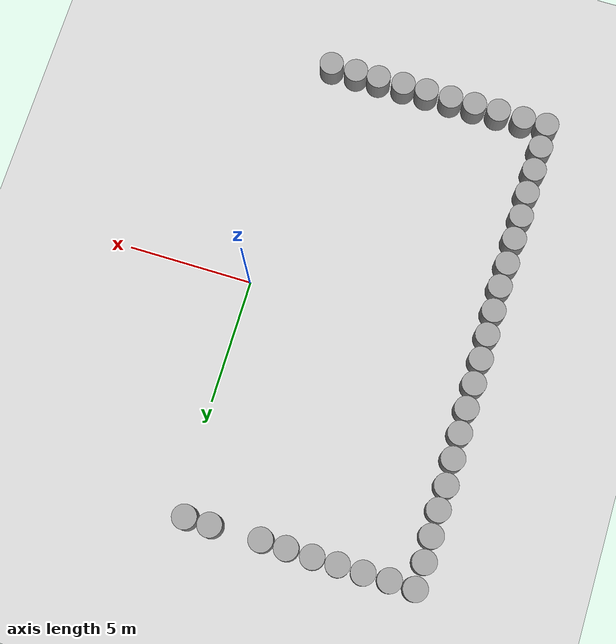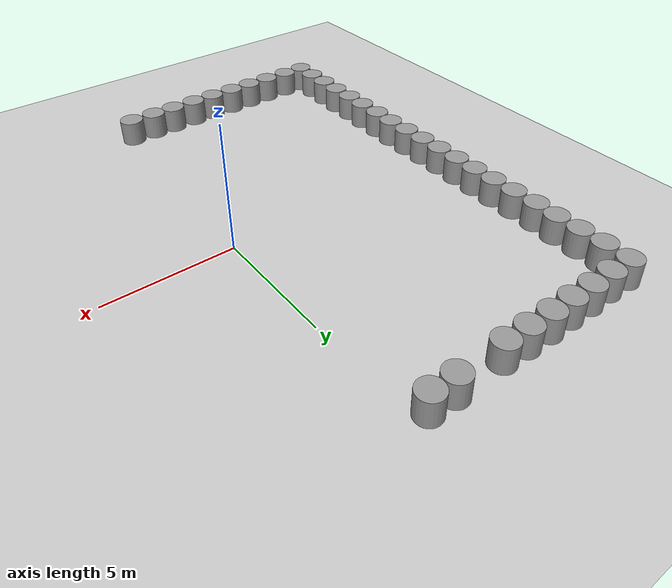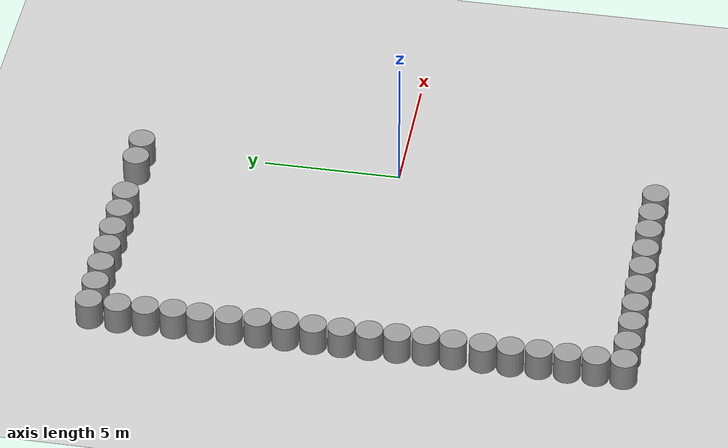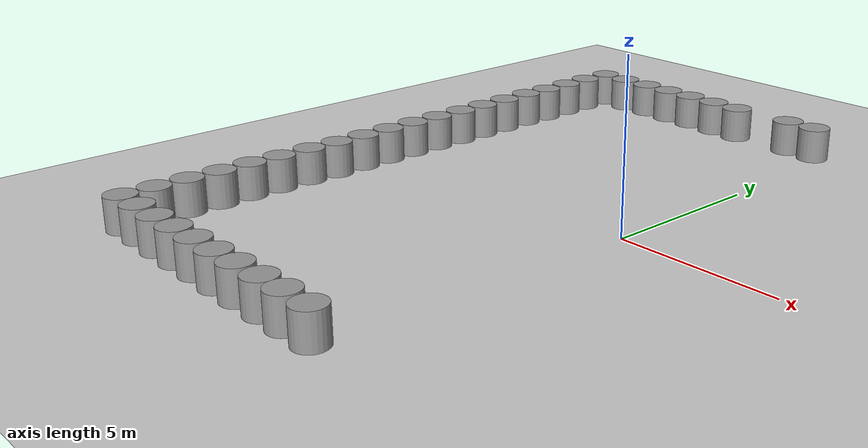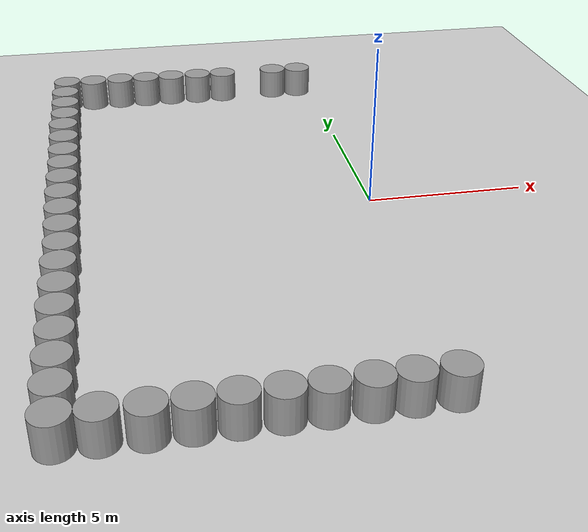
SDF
<sdf version="1.6">
 <world name="default">
  <model name="ground_plane">
   <static>1</static>
   <static>1</static>
   <link name="link">
    <collision name="collision">
     <geometry><plane><normal>0 0 1</normal><size>100 100</size></plane></geometry>
     <surface><friction><ode><mu>100</mu><mu2>50</mu2></ode></friction></surface>
    </collision>
    <visual name="visual">
     <cast_shadows>0</cast_shadows>
     <geometry><plane><normal>0 0 1</normal><size>100 100</size></plane></geometry>
     <material>
      <script><uri>file://media/materials/scripts/gazebo.material</uri><name>Gazebo/Grey</name></script>
     </material>
    </visual>
   </link>
  </model>
  <model name="unit_cylinder_153_clone">
   <static>1</static>
   <pose>-2.53306 9.49161 0 0 -0 0</pose>
   <link name="link">
    <inertial>
     <mass>1</mass>
     <inertia><ixx>0.145833</ixx><ixy>0</ixy><ixz>0</ixz><iyy>0.145833</iyy><iyz>0</iyz><izz>0.125</izz></inertia>
    </inertial>
    <collision name="collision">
     <geometry><cylinder><radius>5.33026e-14</radius><length>2.81043e-05</length></cylinder></geometry>
    </collision>
    <visual name="visual">
     <geometry><cylinder><radius>5.33026e-14</radius><length>2.81043e-05</length></cylinder></geometry>
     <material>
      <script><name>Gazebo/Grey</name><uri>file://media/materials/scripts/gazebo.material</uri></script>
     </material>
    </visual>
   </link>
  </model>
  <model name="unit_cylinder_153_clone_clone">
   <static>1</static>
   <pose>-3.49566 9.49338 0 0 -0 0</pose>
   <link name="link">
    <inertial>
     <mass>1</mass>
     <inertia><ixx>0.145833</ixx><ixy>0</ixy><ixz>0</ixz><iyy>0.145833</iyy><iyz>0</iyz><izz>0.125</izz></inertia>
    </inertial>
    <collision name="collision">
     <geometry><cylinder><radius>0.484115</radius><length>2.01101</length></cylinder></geometry>
    </collision>
    <visual name="visual">
     <geometry><cylinder><radius>0.484115</radius><length>2.01101</length></cylinder></geometry>
     <material>
      <script><name>Gazebo/Grey</name><uri>file://media/materials/scripts/gazebo.material</uri></script>
     </material>
    </visual>
   </link>
  </model>
  <model name="unit_cylinder_153_clone_clone_0">
   <static>1</static>
   <pose>-4.49436 9.51539 0 0 -0 0</pose>
   <link name="link">
    <inertial>
     <mass>1</mass>
     <inertia><ixx>0.145833</ixx><ixy>0</ixy><ixz>0</ixz><iyy>0.145833</iyy><iyz>0</iyz><izz>0.125</izz></inertia>
    </inertial>
    <collision name="collision">
     <geometry><cylinder><radius>0.484115</radius><length>2.01101</length></cylinder></geometry>
    </collision>
    <visual name="visual">
     <geometry><cylinder><radius>0.484115</radius><length>2.01101</length></cylinder></geometry>
     <material>
      <script><name>Gazebo/Grey</name><uri>file://media/materials/scripts/gazebo.material</uri></script>
     </material>
    </visual>
   </link>
  </model>
  <model name="unit_cylinder_153_clone_clone_1">
   <static>1</static>
   <pose>-5.51947 9.53739 0 0 -0 0</pose>
   <link name="link">
    <inertial>
     <mass>1</mass>
     <inertia><ixx>0.145833</ixx><ixy>0</ixy><ixz>0</ixz><iyy>0.145833</iyy><iyz>0</iyz><izz>0.125</izz></inertia>
    </inertial>
    <collision name="collision">
     <geometry><cylinder><radius>0.484115</radius><length>2.01101</length></cylinder></geometry>
    </collision>
    <visual name="visual">
     <geometry><cylinder><radius>0.484115</radius><length>2.01101</length></cylinder></geometry>
     <material>
      <script><name>Gazebo/Grey</name><uri>file://media/materials/scripts/gazebo.material</uri></script>
     </material>
    </visual>
   </link>
  </model>
  <model name="unit_cylinder_153_clone_clone_2">
   <static>1</static>
   <pose>-6.50057 9.52858 0 0 -0 0</pose>
   <link name="link">
    <inertial>
     <mass>1</mass>
     <inertia><ixx>0.145833</ixx><ixy>0</ixy><ixz>0</ixz><iyy>0.145833</iyy><iyz>0</iyz><izz>0.125</izz></inertia>
    </inertial>
    <collision name="collision">
     <geometry><cylinder><radius>0.484115</radius><length>2.01101</length></cylinder></geometry>
    </collision>
    <visual name="visual">
     <geometry><cylinder><radius>0.484115</radius><length>2.01101</length></cylinder></geometry>
     <material>
      <script><name>Gazebo/Grey</name><uri>file://media/materials/scripts/gazebo.material</uri></script>
     </material>
    </visual>
   </link>
  </model>
  <model name="unit_cylinder_153_clone_clone_3">
   <static>1</static>
   <pose>-7.49487 9.54178 0 0 -0 0</pose>
   <link name="link">
    <inertial>
     <mass>1</mass>
     <inertia><ixx>0.145833</ixx><ixy>0</ixy><ixz>0</ixz><iyy>0.145833</iyy><iyz>0</iyz><izz>0.125</izz></inertia>
    </inertial>
    <collision name="collision">
     <geometry><cylinder><radius>0.484115</radius><length>2.01101</length></cylinder></geometry>
    </collision>
    <visual name="visual">
     <geometry><cylinder><radius>0.484115</radius><length>2.01101</length></cylinder></geometry>
     <material>
      <script><name>Gazebo/Grey</name><uri>file://media/materials/scripts/gazebo.material</uri></script>
     </material>
    </visual>
   </link>
  </model>
  <model name="unit_cylinder_153_clone_clone_4">
   <static>1</static>
   <pose>-8.51117 9.52418 0 0 -0 0</pose>
   <link name="link">
    <inertial>
     <mass>1</mass>
     <inertia><ixx>0.145833</ixx><ixy>0</ixy><ixz>0</ixz><iyy>0.145833</iyy><iyz>0</iyz><izz>0.125</izz></inertia>
    </inertial>
    <collision name="collision">
     <geometry><cylinder><radius>0.484115</radius><length>2.01101</length></cylinder></geometry>
    </collision>
    <visual name="visual">
     <geometry><cylinder><radius>0.484115</radius><length>2.01101</length></cylinder></geometry>
     <material>
      <script><name>Gazebo/Grey</name><uri>file://media/materials/scripts/gazebo.material</uri></script>
     </material>
    </visual>
   </link>
  </model>
  <model name="unit_cylinder_153_clone_clone_5">
   <static>1</static>
   <pose>-9.50987 9.54619 0 0 -0 0</pose>
   <link name="link">
    <inertial>
     <mass>1</mass>
     <inertia><ixx>0.145833</ixx><ixy>0</ixy><ixz>0</ixz><iyy>0.145833</iyy><iyz>0</iyz><izz>0.125</izz></inertia>
    </inertial>
    <collision name="collision">
     <geometry><cylinder><radius>0.484115</radius><length>2.01101</length></cylinder></geometry>
    </collision>
    <visual name="visual">
     <geometry><cylinder><radius>0.484115</radius><length>2.01101</length></cylinder></geometry>
     <material>
      <script><name>Gazebo/Grey</name><uri>file://media/materials/scripts/gazebo.material</uri></script>
     </material>
    </visual>
   </link>
  </model>
  <model name="unit_cylinder_153_clone_clone_6">
   <static>1</static>
   <pose>-9.55826 8.50789 0 0 -0 0</pose>
   <link name="link">
    <inertial>
     <mass>1</mass>
     <inertia><ixx>0.145833</ixx><ixy>0</ixy><ixz>0</ixz><iyy>0.145833</iyy><iyz>0</iyz><izz>0.125</izz></inertia>
    </inertial>
    <collision name="collision">
     <geometry><cylinder><radius>0.484115</radius><length>2.01101</length></cylinder></geometry>
    </collision>
    <visual name="visual">
     <geometry><cylinder><radius>0.484115</radius><length>2.01101</length></cylinder></geometry>
     <material>
      <script><name>Gazebo/Grey</name><uri>file://media/materials/scripts/gazebo.material</uri></script>
     </material>
    </visual>
   </link>
  </model>
  <model name="unit_cylinder_153_clone_clone_7">
   <static>1</static>
   <pose>-9.54506 7.51359 0 0 -0 0</pose>
   <link name="link">
    <inertial>
     <mass>1</mass>
     <inertia><ixx>0.145833</ixx><ixy>0</ixy><ixz>0</ixz><iyy>0.145833</iyy><iyz>0</iyz><izz>0.125</izz></inertia>
    </inertial>
    <collision name="collision">
     <geometry><cylinder><radius>0.484115</radius><length>2.01101</length></cylinder></geometry>
    </collision>
    <visual name="visual">
     <geometry><cylinder><radius>0.484115</radius><length>2.01101</length></cylinder></geometry>
     <material>
      <script><name>Gazebo/Grey</name><uri>file://media/materials/scripts/gazebo.material</uri></script>
     </material>
    </visual>
   </link>
  </model>
  <model name="unit_cylinder_153_clone_clone_8">
   <static>1</static>
   <pose>-9.53187 6.50609 0 0 -0 0</pose>
   <link name="link">
    <inertial>
     <mass>1</mass>
     <inertia><ixx>0.145833</ixx><ixy>0</ixy><ixz>0</ixz><iyy>0.145833</iyy><iyz>0</iyz><izz>0.125</izz></inertia>
    </inertial>
    <collision name="collision">
     <geometry><cylinder><radius>0.484115</radius><length>2.01101</length></cylinder></geometry>
    </collision>
    <visual name="visual">
     <geometry><cylinder><radius>0.484115</radius><length>2.01101</length></cylinder></geometry>
     <material>
      <script><name>Gazebo/Grey</name><uri>file://media/materials/scripts/gazebo.material</uri></script>
     </material>
    </visual>
   </link>
  </model>
  <model name="unit_cylinder_153_clone_clone_9">
   <static>1</static>
   <pose>-9.56706 5.54699 0 0 -0 0</pose>
   <link name="link">
    <inertial>
     <mass>1</mass>
     <inertia><ixx>0.145833</ixx><ixy>0</ixy><ixz>0</ixz><iyy>0.145833</iyy><iyz>0</iyz><izz>0.125</izz></inertia>
    </inertial>
    <collision name="collision">
     <geometry><cylinder><radius>0.484115</radius><length>2.01101</length></cylinder></geometry>
    </collision>
    <visual name="visual">
     <geometry><cylinder><radius>0.484115</radius><length>2.01101</length></cylinder></geometry>
     <material>
      <script><name>Gazebo/Grey</name><uri>file://media/materials/scripts/gazebo.material</uri></script>
     </material>
    </visual>
   </link>
  </model>
  <model name="unit_cylinder_153_clone_clone_10">
   <static>1</static>
   <pose>-9.53627 4.50868 0 0 -0 0</pose>
   <link name="link">
    <inertial>
     <mass>1</mass>
     <inertia><ixx>0.145833</ixx><ixy>0</ixy><ixz>0</ixz><iyy>0.145833</iyy><iyz>0</iyz><izz>0.125</izz></inertia>
    </inertial>
    <collision name="collision">
     <geometry><cylinder><radius>0.484115</radius><length>2.01101</length></cylinder></geometry>
    </collision>
    <visual name="visual">
     <geometry><cylinder><radius>0.484115</radius><length>2.01101</length></cylinder></geometry>
     <material>
      <script><name>Gazebo/Grey</name><uri>file://media/materials/scripts/gazebo.material</uri></script>
     </material>
    </visual>
   </link>
  </model>
  <model name="unit_cylinder_153_clone_clone_11">
   <static>1</static>
   <pose>-9.52307 3.49679 0 0 -0 0</pose>
   <link name="link">
    <inertial>
     <mass>1</mass>
     <inertia><ixx>0.145833</ixx><ixy>0</ixy><ixz>0</ixz><iyy>0.145833</iyy><iyz>0</iyz><izz>0.125</izz></inertia>
    </inertial>
    <collision name="collision">
     <geometry><cylinder><radius>0.484115</radius><length>2.01101</length></cylinder></geometry>
    </collision>
    <visual name="visual">
     <geometry><cylinder><radius>0.484115</radius><length>2.01101</length></cylinder></geometry>
     <material>
      <script><name>Gazebo/Grey</name><uri>file://media/materials/scripts/gazebo.material</uri></script>
     </material>
    </visual>
   </link>
  </model>
  <model name="unit_cylinder_153_clone_clone_12">
   <static>1</static>
   <pose>-9.50986 2.51128 0 0 -0 0</pose>
   <link name="link">
    <inertial>
     <mass>1</mass>
     <inertia><ixx>0.145833</ixx><ixy>0</ixy><ixz>0</ixz><iyy>0.145833</iyy><iyz>0</iyz><izz>0.125</izz></inertia>
    </inertial>
    <collision name="collision">
     <geometry><cylinder><radius>0.484115</radius><length>2.01101</length></cylinder></geometry>
    </collision>
    <visual name="visual">
     <geometry><cylinder><radius>0.484115</radius><length>2.01101</length></cylinder></geometry>
     <material>
      <script><name>Gazebo/Grey</name><uri>file://media/materials/scripts/gazebo.material</uri></script>
     </material>
    </visual>
   </link>
  </model>
  <model name="unit_cylinder_153_clone_clone_13">
   <static>1</static>
   <pose>-9.52306 1.50818 0 0 -0 0</pose>
   <link name="link">
    <inertial>
     <mass>1</mass>
     <inertia><ixx>0.145833</ixx><ixy>0</ixy><ixz>0</ixz><iyy>0.145833</iyy><iyz>0</iyz><izz>0.125</izz></inertia>
    </inertial>
    <collision name="collision">
     <geometry><cylinder><radius>0.484115</radius><length>2.01101</length></cylinder></geometry>
    </collision>
    <visual name="visual">
     <geometry><cylinder><radius>0.484115</radius><length>2.01101</length></cylinder></geometry>
     <material>
      <script><name>Gazebo/Grey</name><uri>file://media/materials/scripts/gazebo.material</uri></script>
     </material>
    </visual>
   </link>
  </model>
  <model name="unit_cylinder_153_clone_clone_14">
   <static>1</static>
   <pose>-9.52307 0.50508 0 0 -0 0</pose>
   <link name="link">
    <inertial>
     <mass>1</mass>
     <inertia><ixx>0.145833</ixx><ixy>0</ixy><ixz>0</ixz><iyy>0.145833</iyy><iyz>0</iyz><izz>0.125</izz></inertia>
    </inertial>
    <collision name="collision">
     <geometry><cylinder><radius>0.484115</radius><length>2.01101</length></cylinder></geometry>
    </collision>
    <visual name="visual">
     <geometry><cylinder><radius>0.484115</radius><length>2.01101</length></cylinder></geometry>
     <material>
      <script><name>Gazebo/Grey</name><uri>file://media/materials/scripts/gazebo.material</uri></script>
     </material>
    </visual>
   </link>
  </model>
  <model name="unit_cylinder_153_clone_clone_15">
   <static>1</static>
   <pose>-9.50547 -0.484821 0 0 -0 0</pose>
   <link name="link">
    <inertial>
     <mass>1</mass>
     <inertia><ixx>0.145833</ixx><ixy>0</ixy><ixz>0</ixz><iyy>0.145833</iyy><iyz>0</iyz><izz>0.125</izz></inertia>
    </inertial>
    <collision name="collision">
     <geometry><cylinder><radius>0.484115</radius><length>2.01101</length></cylinder></geometry>
    </collision>
    <visual name="visual">
     <geometry><cylinder><radius>0.484115</radius><length>2.01101</length></cylinder></geometry>
     <material>
      <script><name>Gazebo/Grey</name><uri>file://media/materials/scripts/gazebo.material</uri></script>
     </material>
    </visual>
   </link>
  </model>
  <model name="unit_cylinder_153_clone_clone_16">
   <static>1</static>
   <pose>-9.48788 -1.47472 0 0 -0 0</pose>
   <link name="link">
    <inertial>
     <mass>1</mass>
     <inertia><ixx>0.145833</ixx><ixy>0</ixy><ixz>0</ixz><iyy>0.145833</iyy><iyz>0</iyz><izz>0.125</izz></inertia>
    </inertial>
    <collision name="collision">
     <geometry><cylinder><radius>0.484115</radius><length>2.01101</length></cylinder></geometry>
    </collision>
    <visual name="visual">
     <geometry><cylinder><radius>0.484115</radius><length>2.01101</length></cylinder></geometry>
     <material>
      <script><name>Gazebo/Grey</name><uri>file://media/materials/scripts/gazebo.material</uri></script>
     </material>
    </visual>
   </link>
  </model>
  <model name="unit_cylinder_153_clone_clone_17">
   <static>1</static>
   <pose>-9.46588 -2.48222 0 0 -0 0</pose>
   <link name="link">
    <inertial>
     <mass>1</mass>
     <inertia><ixx>0.145833</ixx><ixy>0</ixy><ixz>0</ixz><iyy>0.145833</iyy><iyz>0</iyz><izz>0.125</izz></inertia>
    </inertial>
    <collision name="collision">
     <geometry><cylinder><radius>0.484115</radius><length>2.01101</length></cylinder></geometry>
    </collision>
    <visual name="visual">
     <geometry><cylinder><radius>0.484115</radius><length>2.01101</length></cylinder></geometry>
     <material>
      <script><name>Gazebo/Grey</name><uri>file://media/materials/scripts/gazebo.material</uri></script>
     </material>
    </visual>
   </link>
  </model>
  <model name="unit_cylinder_153_clone_clone_18">
   <static>1</static>
   <pose>-9.49668 -3.45892 0 0 -0 0</pose>
   <link name="link">
    <inertial>
     <mass>1</mass>
     <inertia><ixx>0.145833</ixx><ixy>0</ixy><ixz>0</ixz><iyy>0.145833</iyy><iyz>0</iyz><izz>0.125</izz></inertia>
    </inertial>
    <collision name="collision">
     <geometry><cylinder><radius>0.484115</radius><length>2.01101</length></cylinder></geometry>
    </collision>
    <visual name="visual">
     <geometry><cylinder><radius>0.484115</radius><length>2.01101</length></cylinder></geometry>
     <material>
      <script><name>Gazebo/Grey</name><uri>file://media/materials/scripts/gazebo.material</uri></script>
     </material>
    </visual>
   </link>
  </model>
  <model name="unit_cylinder_153_clone_clone_19">
   <static>1</static>
   <pose>-9.49668 -4.50602 0 0 -0 0</pose>
   <link name="link">
    <inertial>
     <mass>1</mass>
     <inertia><ixx>0.145833</ixx><ixy>0</ixy><ixz>0</ixz><iyy>0.145833</iyy><iyz>0</iyz><izz>0.125</izz></inertia>
    </inertial>
    <collision name="collision">
     <geometry><cylinder><radius>0.484115</radius><length>2.01101</length></cylinder></geometry>
    </collision>
    <visual name="visual">
     <geometry><cylinder><radius>0.484115</radius><length>2.01101</length></cylinder></geometry>
     <material>
      <script><name>Gazebo/Grey</name><uri>file://media/materials/scripts/gazebo.material</uri></script>
     </material>
    </visual>
   </link>
  </model>
  <model name="unit_cylinder_153_clone_clone_20">
   <static>1</static>
   <pose>-9.51868 -5.48712 0 0 -0 0</pose>
   <link name="link">
    <inertial>
     <mass>1</mass>
     <inertia><ixx>0.145833</ixx><ixy>0</ixy><ixz>0</ixz><iyy>0.145833</iyy><iyz>0</iyz><izz>0.125</izz></inertia>
    </inertial>
    <collision name="collision">
     <geometry><cylinder><radius>0.484115</radius><length>2.01101</length></cylinder></geometry>
    </collision>
    <visual name="visual">
     <geometry><cylinder><radius>0.484115</radius><length>2.01101</length></cylinder></geometry>
     <material>
      <script><name>Gazebo/Grey</name><uri>file://media/materials/scripts/gazebo.material</uri></script>
     </material>
    </visual>
   </link>
  </model>
  <model name="unit_cylinder_153_clone_clone_21">
   <static>1</static>
   <pose>-9.49228 -6.48582 0 0 -0 0</pose>
   <link name="link">
    <inertial>
     <mass>1</mass>
     <inertia><ixx>0.145833</ixx><ixy>0</ixy><ixz>0</ixz><iyy>0.145833</iyy><iyz>0</iyz><izz>0.125</izz></inertia>
    </inertial>
    <collision name="collision">
     <geometry><cylinder><radius>0.484115</radius><length>2.01101</length></cylinder></geometry>
    </collision>
    <visual name="visual">
     <geometry><cylinder><radius>0.484115</radius><length>2.01101</length></cylinder></geometry>
     <material>
      <script><name>Gazebo/Grey</name><uri>file://media/materials/scripts/gazebo.material</uri></script>
     </material>
    </visual>
   </link>
  </model>
  <model name="unit_cylinder_153_clone_clone_22">
   <static>1</static>
   <pose>-9.51428 -7.48893 0 0 -0 0</pose>
   <link name="link">
    <inertial>
     <mass>1</mass>
     <inertia><ixx>0.145833</ixx><ixy>0</ixy><ixz>0</ixz><iyy>0.145833</iyy><iyz>0</iyz><izz>0.125</izz></inertia>
    </inertial>
    <collision name="collision">
     <geometry><cylinder><radius>0.484115</radius><length>2.01101</length></cylinder></geometry>
    </collision>
    <visual name="visual">
     <geometry><cylinder><radius>0.484115</radius><length>2.01101</length></cylinder></geometry>
     <material>
      <script><name>Gazebo/Grey</name><uri>file://media/materials/scripts/gazebo.material</uri></script>
     </material>
    </visual>
   </link>
  </model>
  <model name="unit_cylinder_153_clone_clone_23">
   <static>1</static>
   <pose>-9.51428 -8.48763 0 0 -0 0</pose>
   <link name="link">
    <inertial>
     <mass>1</mass>
     <inertia><ixx>0.145833</ixx><ixy>0</ixy><ixz>0</ixz><iyy>0.145833</iyy><iyz>0</iyz><izz>0.125</izz></inertia>
    </inertial>
    <collision name="collision">
     <geometry><cylinder><radius>0.484115</radius><length>2.01101</length></cylinder></geometry>
    </collision>
    <visual name="visual">
     <geometry><cylinder><radius>0.484115</radius><length>2.01101</length></cylinder></geometry>
     <material>
      <script><name>Gazebo/Grey</name><uri>file://media/materials/scripts/gazebo.material</uri></script>
     </material>
    </visual>
   </link>
  </model>
  <model name="unit_cylinder_153_clone_clone_24">
   <static>1</static>
   <pose>-9.50988 -9.47313 0 0 -0 0</pose>
   <link name="link">
    <inertial>
     <mass>1</mass>
     <inertia><ixx>0.145833</ixx><ixy>0</ixy><ixz>0</ixz><iyy>0.145833</iyy><iyz>0</iyz><izz>0.125</izz></inertia>
    </inertial>
    <collision name="collision">
     <geometry><cylinder><radius>0.484115</radius><length>2.01101</length></cylinder></geometry>
    </collision>
    <visual name="visual">
     <geometry><cylinder><radius>0.484115</radius><length>2.01101</length></cylinder></geometry>
     <material>
      <script><name>Gazebo/Grey</name><uri>file://media/materials/scripts/gazebo.material</uri></script>
     </material>
    </visual>
   </link>
  </model>
  <model name="unit_cylinder_153_clone_clone_25">
   <static>1</static>
   <pose>-8.54198 -9.47313 0 0 -0 0</pose>
   <link name="link">
    <inertial>
     <mass>1</mass>
     <inertia><ixx>0.145833</ixx><ixy>0</ixy><ixz>0</ixz><iyy>0.145833</iyy><iyz>0</iyz><izz>0.125</izz></inertia>
    </inertial>
    <collision name="collision">
     <geometry><cylinder><radius>0.484115</radius><length>2.01101</length></cylinder></geometry>
    </collision>
    <visual name="visual">
     <geometry><cylinder><radius>0.484115</radius><length>2.01101</length></cylinder></geometry>
     <material>
      <script><name>Gazebo/Grey</name><uri>file://media/materials/scripts/gazebo.material</uri></script>
     </material>
    </visual>
   </link>
  </model>
  <model name="unit_cylinder_153_clone_clone_26">
   <static>1</static>
   <pose>-7.49928 -9.49953 0 0 -0 0</pose>
   <link name="link">
    <inertial>
     <mass>1</mass>
     <inertia><ixx>0.145833</ixx><ixy>0</ixy><ixz>0</ixz><iyy>0.145833</iyy><iyz>0</iyz><izz>0.125</izz></inertia>
    </inertial>
    <collision name="collision">
     <geometry><cylinder><radius>0.484115</radius><length>2.01101</length></cylinder></geometry>
    </collision>
    <visual name="visual">
     <geometry><cylinder><radius>0.484115</radius><length>2.01101</length></cylinder></geometry>
     <material>
      <script><name>Gazebo/Grey</name><uri>file://media/materials/scripts/gazebo.material</uri></script>
     </material>
    </visual>
   </link>
  </model>
  <model name="unit_cylinder_153_clone_clone_27">
   <static>1</static>
   <pose>-6.50058 -9.49073 0 0 -0 0</pose>
   <link name="link">
    <inertial>
     <mass>1</mass>
     <inertia><ixx>0.145833</ixx><ixy>0</ixy><ixz>0</ixz><iyy>0.145833</iyy><iyz>0</iyz><izz>0.125</izz></inertia>
    </inertial>
    <collision name="collision">
     <geometry><cylinder><radius>0.484115</radius><length>2.01101</length></cylinder></geometry>
    </collision>
    <visual name="visual">
     <geometry><cylinder><radius>0.484115</radius><length>2.01101</length></cylinder></geometry>
     <material>
      <script><name>Gazebo/Grey</name><uri>file://media/materials/scripts/gazebo.material</uri></script>
     </material>
    </visual>
   </link>
  </model>
  <model name="unit_cylinder_153_clone_clone_28">
   <static>1</static>
   <pose>-5.51068 -9.48634 0 0 -0 0</pose>
   <link name="link">
    <inertial>
     <mass>1</mass>
     <inertia><ixx>0.145833</ixx><ixy>0</ixy><ixz>0</ixz><iyy>0.145833</iyy><iyz>0</iyz><izz>0.125</izz></inertia>
    </inertial>
    <collision name="collision">
     <geometry><cylinder><radius>0.484115</radius><length>2.01101</length></cylinder></geometry>
    </collision>
    <visual name="visual">
     <geometry><cylinder><radius>0.484115</radius><length>2.01101</length></cylinder></geometry>
     <material>
      <script><name>Gazebo/Grey</name><uri>file://media/materials/scripts/gazebo.material</uri></script>
     </material>
    </visual>
   </link>
  </model>
  <model name="unit_cylinder_153_clone_clone_29">
   <static>1</static>
   <pose>-4.49437 -9.49953 0 0 -0 0</pose>
   <link name="link">
    <inertial>
     <mass>1</mass>
     <inertia><ixx>0.145833</ixx><ixy>0</ixy><ixz>0</ixz><iyy>0.145833</iyy><iyz>0</iyz><izz>0.125</izz></inertia>
    </inertial>
    <collision name="collision">
     <geometry><cylinder><radius>0.484115</radius><length>2.01101</length></cylinder></geometry>
    </collision>
    <visual name="visual">
     <geometry><cylinder><radius>0.484115</radius><length>2.01101</length></cylinder></geometry>
     <material>
      <script><name>Gazebo/Grey</name><uri>file://media/materials/scripts/gazebo.material</uri></script>
     </material>
    </visual>
   </link>
  </model>
  <model name="unit_cylinder_153_clone_clone_30">
   <static>1</static>
   <pose>-3.51327 -9.49074 0 0 -0 0</pose>
   <link name="link">
    <inertial>
     <mass>1</mass>
     <inertia><ixx>0.145833</ixx><ixy>0</ixy><ixz>0</ixz><iyy>0.145833</iyy><iyz>0</iyz><izz>0.125</izz></inertia>
    </inertial>
    <collision name="collision">
     <geometry><cylinder><radius>0.484115</radius><length>2.01101</length></cylinder></geometry>
    </collision>
    <visual name="visual">
     <geometry><cylinder><radius>0.484115</radius><length>2.01101</length></cylinder></geometry>
     <material>
      <script><name>Gazebo/Grey</name><uri>file://media/materials/scripts/gazebo.material</uri></script>
     </material>
    </visual>
   </link>
  </model>
  <model name="unit_cylinder_153_clone_clone_31">
   <static>1</static>
   <pose>-2.47497 -9.47754 0 0 -0 0</pose>
   <link name="link">
    <inertial>
     <mass>1</mass>
     <inertia><ixx>0.145833</ixx><ixy>0</ixy><ixz>0</ixz><iyy>0.145833</iyy><iyz>0</iyz><izz>0.125</izz></inertia>
    </inertial>
    <collision name="collision">
     <geometry><cylinder><radius>0.484115</radius><length>2.01101</length></cylinder></geometry>
    </collision>
    <visual name="visual">
     <geometry><cylinder><radius>0.484115</radius><length>2.01101</length></cylinder></geometry>
     <material>
      <script><name>Gazebo/Grey</name><uri>file://media/materials/scripts/gazebo.material</uri></script>
     </material>
    </visual>
   </link>
  </model>
  <model name="unit_cylinder_153_clone_clone_32">
   <static>1</static>
   <pose>-1.52027 -9.47314 0 0 -0 0</pose>
   <link name="link">
    <inertial>
     <mass>1</mass>
     <inertia><ixx>0.145833</ixx><ixy>0</ixy><ixz>0</ixz><iyy>0.145833</iyy><iyz>0</iyz><izz>0.125</izz></inertia>
    </inertial>
    <collision name="collision">
     <geometry><cylinder><radius>0.484115</radius><length>2.01101</length></cylinder></geometry>
    </collision>
    <visual name="visual">
     <geometry><cylinder><radius>0.484115</radius><length>2.01101</length></cylinder></geometry>
     <material>
      <script><name>Gazebo/Grey</name><uri>file://media/materials/scripts/gazebo.material</uri></script>
     </material>
    </visual>
   </link>
  </model>
  <model name="unit_cylinder_153_clone_clone_33">
   <static>1</static>
   <pose>-0.486373 -9.47754 0 0 -0 0</pose>
   <link name="link">
    <inertial>
     <mass>1</mass>
     <inertia><ixx>0.145833</ixx><ixy>0</ixy><ixz>0</ixz><iyy>0.145833</iyy><iyz>0</iyz><izz>0.125</izz></inertia>
    </inertial>
    <collision name="collision">
     <geometry><cylinder><radius>0.484115</radius><length>2.01101</length></cylinder></geometry>
    </collision>
    <visual name="visual">
     <geometry><cylinder><radius>0.484115</radius><length>2.01101</length></cylinder></geometry>
     <material>
      <script><name>Gazebo/Grey</name><uri>file://media/materials/scripts/gazebo.material</uri></script>
     </material>
    </visual>
   </link>
  </model>
  <model name="unit_cylinder_153_clone_clone_72">
   <static>1</static>
   <pose>-0.510094 9.51511 0 0 -0 0</pose>
   <link name="link">
    <inertial>
     <mass>1</mass>
     <inertia><ixx>0.145833</ixx><ixy>0</ixy><ixz>0</ixz><iyy>0.145833</iyy><iyz>0</iyz><izz>0.125</izz></inertia>
    </inertial>
    <collision name="collision">
     <geometry><cylinder><radius>0.484115</radius><length>2.01101</length></cylinder></geometry>
    </collision>
    <visual name="visual">
     <geometry><cylinder><radius>0.484115</radius><length>2.01101</length></cylinder></geometry>
     <material>
      <script><name>Gazebo/Grey</name><uri>file://media/materials/scripts/gazebo.material</uri></script>
     </material>
    </visual>
   </link>
  </model>
  <model name="unit_cylinder_153_clone_clone_73">
   <static>1</static>
   <pose>-1.50558 9.52682 0 0 -0 0</pose>
   <link name="link">
    <inertial>
     <mass>1</mass>
     <inertia><ixx>0.145833</ixx><ixy>0</ixy><ixz>0</ixz><iyy>0.145833</iyy><iyz>0</iyz><izz>0.125</izz></inertia>
    </inertial>
    <collision name="collision">
     <geometry><cylinder><radius>0.484115</radius><length>2.01101</length></cylinder></geometry>
    </collision>
    <visual name="visual">
     <geometry><cylinder><radius>0.484115</radius><length>2.01101</length></cylinder></geometry>
     <material>
      <script><name>Gazebo/Grey</name><uri>file://media/materials/scripts/gazebo.material</uri></script>
     </material>
    </visual>
   </link>
  </model>
 </world>
</sdf>
